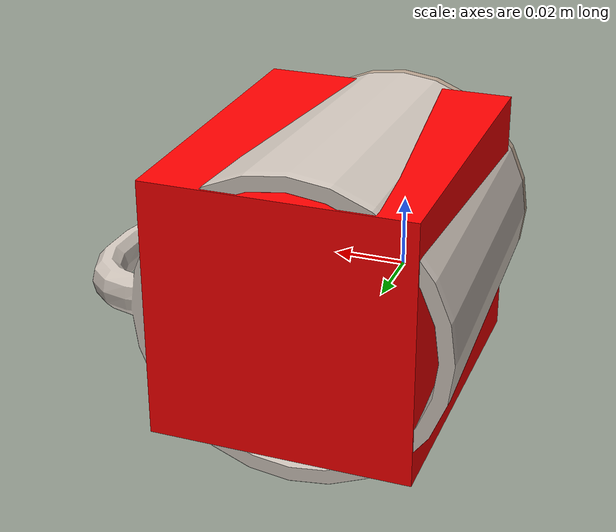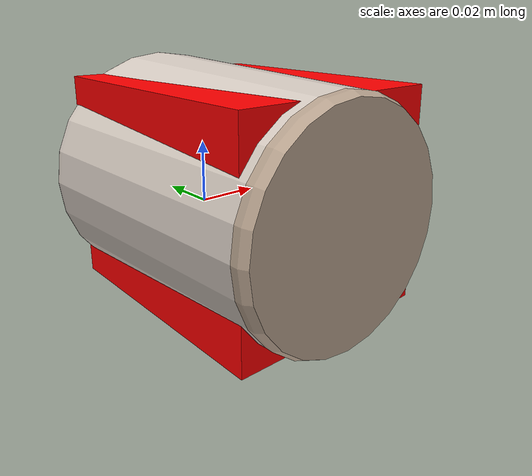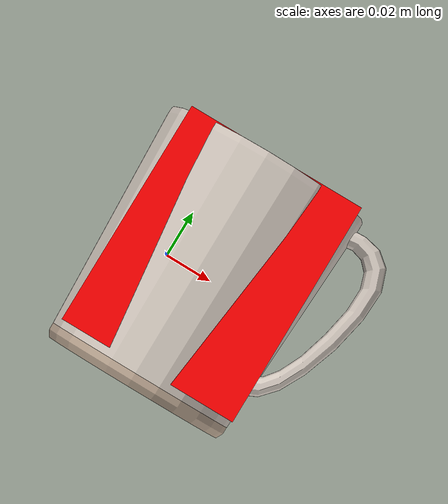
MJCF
<mujoco model="Mug_2">
  <compiler autolimits="true" boundmass="0" angle="radian"/>
  <default>
    <default class="/">
      <default class="__VISUAL_MJT__">
        <geom contype="0" conaffinity="0" group="0"/>
      </default>
      <default class="__STRUCTURAL_MJT__">
        <geom contype="8" conaffinity="15" group="4" friction="0.90000000000000002 0.90000000000000002 0.001" solref="0.025000000000000001 1" solimp="0.998 0.998 0.001"/>
      </default>
      <default class="__DYNAMIC_MJT__">
        <geom contype="1" conaffinity="15" group="4" friction="0.90000000000000002 0.90000000000000002 0.001" solref="0.025000000000000001 1" solimp="0.998 0.998 0.001"/>
      </default>
    </default>
  </default>
  <asset>
    <material name="material_Mug_Decals_Off_Mat" class="/" specular="0.5" shininess="0.5" rgba="1 1 1 0.5"/>
    <material name="material_Porcelain_Sand_Mat" class="/" specular="0.5" shininess="0.5" rgba="0.72549019999999997 0.64313730000000002 0.56470589999999998 1"/>
    <mesh name="Mug_2_mug_2_0" class="/" file="Mug_2_mug_2/Mug_2_mug_2_0.obj" scale="1 1 1"/>
    <mesh name="Mug_2_mug_2_1" class="/" file="Mug_2_mug_2/Mug_2_mug_2_1.obj" scale="1 1 1"/>
  <mesh name="Mug_2_mug_2_0_collision_9.obj" file="Mug_2_mug_2/Mug_2_mug_2_0/Mug_2_mug_2_0_collision_9.obj" scale="1 1 1" inertia="legacy"/>
    <mesh name="Mug_2_mug_2_0_collision_3.obj" file="Mug_2_mug_2/Mug_2_mug_2_0/Mug_2_mug_2_0_collision_3.obj" scale="1 1 1" inertia="legacy"/>
    <mesh name="Mug_2_mug_2_0_collision_19.obj" file="Mug_2_mug_2/Mug_2_mug_2_0/Mug_2_mug_2_0_collision_19.obj" scale="1 1 1" inertia="legacy"/>
    <mesh name="Mug_2_mug_2_0_collision_10.obj" file="Mug_2_mug_2/Mug_2_mug_2_0/Mug_2_mug_2_0_collision_10.obj" scale="1 1 1" inertia="legacy"/>
    <mesh name="Mug_2_mug_2_0_collision_6.obj" file="Mug_2_mug_2/Mug_2_mug_2_0/Mug_2_mug_2_0_collision_6.obj" scale="1 1 1" inertia="legacy"/>
    <mesh name="Mug_2_mug_2_0_collision_23.obj" file="Mug_2_mug_2/Mug_2_mug_2_0/Mug_2_mug_2_0_collision_23.obj" scale="1 1 1" inertia="legacy"/>
    <mesh name="Mug_2_mug_2_0_collision_8.obj" file="Mug_2_mug_2/Mug_2_mug_2_0/Mug_2_mug_2_0_collision_8.obj" scale="1 1 1" inertia="legacy"/>
    <mesh name="Mug_2_mug_2_0_collision_24.obj" file="Mug_2_mug_2/Mug_2_mug_2_0/Mug_2_mug_2_0_collision_24.obj" scale="1 1 1" inertia="legacy"/>
    <mesh name="Mug_2_mug_2_0_collision_12.obj" file="Mug_2_mug_2/Mug_2_mug_2_0/Mug_2_mug_2_0_collision_12.obj" scale="1 1 1" inertia="legacy"/>
    <mesh name="Mug_2_mug_2_0_collision_16.obj" file="Mug_2_mug_2/Mug_2_mug_2_0/Mug_2_mug_2_0_collision_16.obj" scale="1 1 1" inertia="legacy"/>
    <mesh name="Mug_2_mug_2_0_collision_4.obj" file="Mug_2_mug_2/Mug_2_mug_2_0/Mug_2_mug_2_0_collision_4.obj" scale="1 1 1" inertia="legacy"/>
    <mesh name="Mug_2_mug_2_0_collision_5.obj" file="Mug_2_mug_2/Mug_2_mug_2_0/Mug_2_mug_2_0_collision_5.obj" scale="1 1 1" inertia="legacy"/>
    <mesh name="Mug_2_mug_2_0_collision_22.obj" file="Mug_2_mug_2/Mug_2_mug_2_0/Mug_2_mug_2_0_collision_22.obj" scale="1 1 1" inertia="legacy"/>
    <mesh name="Mug_2_mug_2_0_collision_7.obj" file="Mug_2_mug_2/Mug_2_mug_2_0/Mug_2_mug_2_0_collision_7.obj" scale="1 1 1" inertia="legacy"/>
    <mesh name="Mug_2_mug_2_0_collision_1.obj" file="Mug_2_mug_2/Mug_2_mug_2_0/Mug_2_mug_2_0_collision_1.obj" scale="1 1 1" inertia="legacy"/>
    <mesh name="Mug_2_mug_2_0_collision_15.obj" file="Mug_2_mug_2/Mug_2_mug_2_0/Mug_2_mug_2_0_collision_15.obj" scale="1 1 1" inertia="legacy"/>
    <mesh name="Mug_2_mug_2_0_collision_21.obj" file="Mug_2_mug_2/Mug_2_mug_2_0/Mug_2_mug_2_0_collision_21.obj" scale="1 1 1" inertia="legacy"/>
    <mesh name="Mug_2_mug_2_0_collision_14.obj" file="Mug_2_mug_2/Mug_2_mug_2_0/Mug_2_mug_2_0_collision_14.obj" scale="1 1 1" inertia="legacy"/>
    <mesh name="Mug_2_mug_2_0_collision_11.obj" file="Mug_2_mug_2/Mug_2_mug_2_0/Mug_2_mug_2_0_collision_11.obj" scale="1 1 1" inertia="legacy"/>
    <mesh name="Mug_2_mug_2_0_collision_0.obj" file="Mug_2_mug_2/Mug_2_mug_2_0/Mug_2_mug_2_0_collision_0.obj" scale="1 1 1" inertia="legacy"/>
    <mesh name="Mug_2_mug_2_0_collision_20.obj" file="Mug_2_mug_2/Mug_2_mug_2_0/Mug_2_mug_2_0_collision_20.obj" scale="1 1 1" inertia="legacy"/>
    <mesh name="Mug_2_mug_2_0_collision_13.obj" file="Mug_2_mug_2/Mug_2_mug_2_0/Mug_2_mug_2_0_collision_13.obj" scale="1 1 1" inertia="legacy"/>
    <mesh name="Mug_2_mug_2_0_collision_18.obj" file="Mug_2_mug_2/Mug_2_mug_2_0/Mug_2_mug_2_0_collision_18.obj" scale="1 1 1" inertia="legacy"/>
    <mesh name="Mug_2_mug_2_0_collision_2.obj" file="Mug_2_mug_2/Mug_2_mug_2_0/Mug_2_mug_2_0_collision_2.obj" scale="1 1 1" inertia="legacy"/>
    <mesh name="Mug_2_mug_2_0_collision_17.obj" file="Mug_2_mug_2/Mug_2_mug_2_0/Mug_2_mug_2_0_collision_17.obj" scale="1 1 1" inertia="legacy"/>
    <mesh name="Mug_2_mug_2_1_collision_15.obj" file="Mug_2_mug_2/Mug_2_mug_2_1/Mug_2_mug_2_1_collision_15.obj" scale="1 1 1" inertia="legacy"/>
    <mesh name="Mug_2_mug_2_1_collision_5.obj" file="Mug_2_mug_2/Mug_2_mug_2_1/Mug_2_mug_2_1_collision_5.obj" scale="1 1 1" inertia="legacy"/>
    <mesh name="Mug_2_mug_2_1_collision_11.obj" file="Mug_2_mug_2/Mug_2_mug_2_1/Mug_2_mug_2_1_collision_11.obj" scale="1 1 1" inertia="legacy"/>
    <mesh name="Mug_2_mug_2_1_collision_21.obj" file="Mug_2_mug_2/Mug_2_mug_2_1/Mug_2_mug_2_1_collision_21.obj" scale="1 1 1" inertia="legacy"/>
    <mesh name="Mug_2_mug_2_1_collision_13.obj" file="Mug_2_mug_2/Mug_2_mug_2_1/Mug_2_mug_2_1_collision_13.obj" scale="1 1 1" inertia="legacy"/>
    <mesh name="Mug_2_mug_2_1_collision_4.obj" file="Mug_2_mug_2/Mug_2_mug_2_1/Mug_2_mug_2_1_collision_4.obj" scale="1 1 1" inertia="legacy"/>
    <mesh name="Mug_2_mug_2_1_collision_0.obj" file="Mug_2_mug_2/Mug_2_mug_2_1/Mug_2_mug_2_1_collision_0.obj" scale="1 1 1" inertia="legacy"/>
    <mesh name="Mug_2_mug_2_1_collision_7.obj" file="Mug_2_mug_2/Mug_2_mug_2_1/Mug_2_mug_2_1_collision_7.obj" scale="1 1 1" inertia="legacy"/>
    <mesh name="Mug_2_mug_2_1_collision_8.obj" file="Mug_2_mug_2/Mug_2_mug_2_1/Mug_2_mug_2_1_collision_8.obj" scale="1 1 1" inertia="legacy"/>
    <mesh name="Mug_2_mug_2_1_collision_3.obj" file="Mug_2_mug_2/Mug_2_mug_2_1/Mug_2_mug_2_1_collision_3.obj" scale="1 1 1" inertia="legacy"/>
    <mesh name="Mug_2_mug_2_1_collision_14.obj" file="Mug_2_mug_2/Mug_2_mug_2_1/Mug_2_mug_2_1_collision_14.obj" scale="1 1 1" inertia="legacy"/>
    <mesh name="Mug_2_mug_2_1_collision_19.obj" file="Mug_2_mug_2/Mug_2_mug_2_1/Mug_2_mug_2_1_collision_19.obj" scale="1 1 1" inertia="legacy"/>
    <mesh name="Mug_2_mug_2_1_collision_24.obj" file="Mug_2_mug_2/Mug_2_mug_2_1/Mug_2_mug_2_1_collision_24.obj" scale="1 1 1" inertia="legacy"/>
    <mesh name="Mug_2_mug_2_1_collision_2.obj" file="Mug_2_mug_2/Mug_2_mug_2_1/Mug_2_mug_2_1_collision_2.obj" scale="1 1 1" inertia="legacy"/>
    <mesh name="Mug_2_mug_2_1_collision_16.obj" file="Mug_2_mug_2/Mug_2_mug_2_1/Mug_2_mug_2_1_collision_16.obj" scale="1 1 1" inertia="legacy"/>
    <mesh name="Mug_2_mug_2_1_collision_17.obj" file="Mug_2_mug_2/Mug_2_mug_2_1/Mug_2_mug_2_1_collision_17.obj" scale="1 1 1" inertia="legacy"/>
    <mesh name="Mug_2_mug_2_1_collision_1.obj" file="Mug_2_mug_2/Mug_2_mug_2_1/Mug_2_mug_2_1_collision_1.obj" scale="1 1 1" inertia="legacy"/>
    <mesh name="Mug_2_mug_2_1_collision_12.obj" file="Mug_2_mug_2/Mug_2_mug_2_1/Mug_2_mug_2_1_collision_12.obj" scale="1 1 1" inertia="legacy"/>
    <mesh name="Mug_2_mug_2_1_collision_22.obj" file="Mug_2_mug_2/Mug_2_mug_2_1/Mug_2_mug_2_1_collision_22.obj" scale="1 1 1" inertia="legacy"/>
    <mesh name="Mug_2_mug_2_1_collision_6.obj" file="Mug_2_mug_2/Mug_2_mug_2_1/Mug_2_mug_2_1_collision_6.obj" scale="1 1 1" inertia="legacy"/>
    <mesh name="Mug_2_mug_2_1_collision_9.obj" file="Mug_2_mug_2/Mug_2_mug_2_1/Mug_2_mug_2_1_collision_9.obj" scale="1 1 1" inertia="legacy"/>
    <mesh name="Mug_2_mug_2_1_collision_18.obj" file="Mug_2_mug_2/Mug_2_mug_2_1/Mug_2_mug_2_1_collision_18.obj" scale="1 1 1" inertia="legacy"/>
    <mesh name="Mug_2_mug_2_1_collision_10.obj" file="Mug_2_mug_2/Mug_2_mug_2_1/Mug_2_mug_2_1_collision_10.obj" scale="1 1 1" inertia="legacy"/>
    <mesh name="Mug_2_mug_2_1_collision_23.obj" file="Mug_2_mug_2/Mug_2_mug_2_1/Mug_2_mug_2_1_collision_23.obj" scale="1 1 1" inertia="legacy"/>
    <mesh name="Mug_2_mug_2_1_collision_20.obj" file="Mug_2_mug_2/Mug_2_mug_2_1/Mug_2_mug_2_1_collision_20.obj" scale="1 1 1" inertia="legacy"/>
    </asset>
  <worldbody>
    <body name="Mug_2">
      <joint name="Mug_2_free" class="/" type="free" pos="0 0 0" axis="0 0 1" stiffness="0" range="0 0" armature="0" damping="0.10000000000000001" frictionloss="0"/>
      <body name="Mug_2_mug_2" pos="0.015469999999999999 -0.051819999999999998 0.00014999999999999999" quat="1 0 0 0">
        <geom name="Mug_2_mug_2_0" class="__VISUAL_MJT__" type="mesh" material="material_Mug_Decals_Off_Mat" mesh="Mug_2_mug_2_0"/>
        <geom name="Mug_2_mug_2_1" class="__VISUAL_MJT__" type="mesh" material="material_Porcelain_Sand_Mat" mesh="Mug_2_mug_2_1"/>
        <site name="Mug_2_mug_2_ReceptacleCollider_0" class="/" type="box" rgba="1 0 0 1" size="0.037699189037084579 0.047414802014827728 0.037806317210197449" pos="0.0031227730214595795 0.056235752999782562 0" quat="0 1 0 0"/>
        <geom name="Mug_2_Mug_2_mug_2_0__MeshCollider_0" type="mesh" mesh="Mug_2_mug_2_0_collision_9.obj" class="__DYNAMIC_MJT__" rgba="0.6219949660012837 0.5413017782055503 0.5721383795019833 0.07186112539435852"/>
    <geom name="Mug_2_Mug_2_mug_2_0__MeshCollider_1" type="mesh" mesh="Mug_2_mug_2_0_collision_3.obj" class="__DYNAMIC_MJT__" rgba="0.5722362928661673 0.06536132283004636 0.6145915483149833 0.11724981107469612"/>
    <geom name="Mug_2_Mug_2_mug_2_0__MeshCollider_2" type="mesh" mesh="Mug_2_mug_2_0_collision_19.obj" class="__DYNAMIC_MJT__" rgba="0.4384422898827932 0.27690145204136085 0.8990941360164961 0.9637879001664292"/>
    <geom name="Mug_2_Mug_2_mug_2_0__MeshCollider_3" type="mesh" mesh="Mug_2_mug_2_0_collision_10.obj" class="__DYNAMIC_MJT__" rgba="0.6084672477191025 0.056031799456683684 0.09820937539611507 0.8653245589500506"/>
    <geom name="Mug_2_Mug_2_mug_2_0__MeshCollider_4" type="mesh" mesh="Mug_2_mug_2_0_collision_6.obj" class="__DYNAMIC_MJT__" rgba="0.3171631821915306 0.0295277423352599 0.9706967462801722 0.7729945740641437"/>
    <geom name="Mug_2_Mug_2_mug_2_0__MeshCollider_5" type="mesh" mesh="Mug_2_mug_2_0_collision_23.obj" class="__DYNAMIC_MJT__" rgba="0.4886745037019524 0.9918674187312975 0.08155125871747015 0.48630937652602024"/>
    <geom name="Mug_2_Mug_2_mug_2_0__MeshCollider_6" type="mesh" mesh="Mug_2_mug_2_0_collision_8.obj" class="__DYNAMIC_MJT__" rgba="0.829496230763246 0.7919795800366036 0.8095015266346265 0.8732900015689286"/>
    <geom name="Mug_2_Mug_2_mug_2_0__MeshCollider_7" type="mesh" mesh="Mug_2_mug_2_0_collision_24.obj" class="__DYNAMIC_MJT__" rgba="0.8340650299827695 0.8031385659023347 0.6204727079433239 0.7325388456294626"/>
    <geom name="Mug_2_Mug_2_mug_2_0__MeshCollider_8" type="mesh" mesh="Mug_2_mug_2_0_collision_12.obj" class="__DYNAMIC_MJT__" rgba="0.014096451857132708 0.41903552366114194 0.7396468253942352 0.5093749871525668"/>
    <geom name="Mug_2_Mug_2_mug_2_0__MeshCollider_9" type="mesh" mesh="Mug_2_mug_2_0_collision_16.obj" class="__DYNAMIC_MJT__" rgba="0.35890504451383176 0.06119410168413397 0.992602372954659 0.44209627682557406"/>
    <geom name="Mug_2_Mug_2_mug_2_0__MeshCollider_10" type="mesh" mesh="Mug_2_mug_2_0_collision_4.obj" class="__DYNAMIC_MJT__" rgba="0.5254000116278414 0.6131865656721318 0.5768614479524019 0.7153334079139696"/>
    <geom name="Mug_2_Mug_2_mug_2_0__MeshCollider_11" type="mesh" mesh="Mug_2_mug_2_0_collision_5.obj" class="__DYNAMIC_MJT__" rgba="0.5541297970788676 0.9152764564374666 0.2777279309121369 0.36136232310910066"/>
    <geom name="Mug_2_Mug_2_mug_2_0__MeshCollider_12" type="mesh" mesh="Mug_2_mug_2_0_collision_22.obj" class="__DYNAMIC_MJT__" rgba="0.8899903881352099 0.23131081225265038 0.2650068768495575 0.08781082597814305"/>
    <geom name="Mug_2_Mug_2_mug_2_0__MeshCollider_13" type="mesh" mesh="Mug_2_mug_2_0_collision_7.obj" class="__DYNAMIC_MJT__" rgba="0.4472527431683708 0.8835731097667074 0.2604293439456883 0.19661832381002942"/>
    <geom name="Mug_2_Mug_2_mug_2_0__MeshCollider_14" type="mesh" mesh="Mug_2_mug_2_0_collision_1.obj" class="__DYNAMIC_MJT__" rgba="0.6194058651514517 0.842494912678963 0.4408269202881261 0.4221862091623575"/>
    <geom name="Mug_2_Mug_2_mug_2_0__MeshCollider_15" type="mesh" mesh="Mug_2_mug_2_0_collision_15.obj" class="__DYNAMIC_MJT__" rgba="0.8193076654555853 0.43050236651400775 0.14369442856439785 0.1330093413746143"/>
    <geom name="Mug_2_Mug_2_mug_2_0__MeshCollider_16" type="mesh" mesh="Mug_2_mug_2_0_collision_21.obj" class="__DYNAMIC_MJT__" rgba="0.8792432622683016 0.20495861158519868 0.6278711800368778 0.9016482322706676"/>
    <geom name="Mug_2_Mug_2_mug_2_0__MeshCollider_17" type="mesh" mesh="Mug_2_mug_2_0_collision_14.obj" class="__DYNAMIC_MJT__" rgba="0.5473608797373394 0.560558473967645 0.9929576029209151 0.7988703479968586"/>
    <geom name="Mug_2_Mug_2_mug_2_0__MeshCollider_18" type="mesh" mesh="Mug_2_mug_2_0_collision_11.obj" class="__DYNAMIC_MJT__" rgba="0.6129162314363938 0.43578465164131064 0.11426430136933508 0.9623515866532968"/>
    <geom name="Mug_2_Mug_2_mug_2_0__MeshCollider_19" type="mesh" mesh="Mug_2_mug_2_0_collision_0.obj" class="__DYNAMIC_MJT__" rgba="0.036858494173493184 0.6217074245542172 0.5643542375703808 0.9086232958080761"/>
    <geom name="Mug_2_Mug_2_mug_2_0__MeshCollider_20" type="mesh" mesh="Mug_2_mug_2_0_collision_20.obj" class="__DYNAMIC_MJT__" rgba="0.5855670630068835 0.3806214206402826 0.17168447039223678 0.8189044150151753"/>
    <geom name="Mug_2_Mug_2_mug_2_0__MeshCollider_21" type="mesh" mesh="Mug_2_mug_2_0_collision_13.obj" class="__DYNAMIC_MJT__" rgba="0.19900912435542428 0.7818624948149762 0.6318662203677912 0.4097042164239306"/>
    <geom name="Mug_2_Mug_2_mug_2_0__MeshCollider_22" type="mesh" mesh="Mug_2_mug_2_0_collision_18.obj" class="__DYNAMIC_MJT__" rgba="0.41933546472186345 0.2188567711898466 0.1176958084379246 0.6326323695746588"/>
    <geom name="Mug_2_Mug_2_mug_2_0__MeshCollider_23" type="mesh" mesh="Mug_2_mug_2_0_collision_2.obj" class="__DYNAMIC_MJT__" rgba="0.4280459630210579 0.5640242914078589 0.1366653884997483 0.45837043512521647"/>
    <geom name="Mug_2_Mug_2_mug_2_0__MeshCollider_24" type="mesh" mesh="Mug_2_mug_2_0_collision_17.obj" class="__DYNAMIC_MJT__" rgba="0.2572218997325102 0.44935159200048 0.35405028213684253 0.8770587340375443"/>
    <geom name="Mug_2_Mug_2_mug_2_0__MeshCollider_25" type="mesh" mesh="Mug_2_mug_2_1_collision_15.obj" class="__DYNAMIC_MJT__" rgba="0.20339465912268417 0.8840649902539853 0.19308214231084708 0.7915583558329079"/>
    <geom name="Mug_2_Mug_2_mug_2_0__MeshCollider_26" type="mesh" mesh="Mug_2_mug_2_1_collision_5.obj" class="__DYNAMIC_MJT__" rgba="0.5788555455557212 0.3362860358381137 0.5740703727124584 0.11759386085586931"/>
    <geom name="Mug_2_Mug_2_mug_2_0__MeshCollider_27" type="mesh" mesh="Mug_2_mug_2_1_collision_11.obj" class="__DYNAMIC_MJT__" rgba="0.6779772171172995 0.9144658044324843 0.8428775582181405 0.6077987043081643"/>
    <geom name="Mug_2_Mug_2_mug_2_0__MeshCollider_28" type="mesh" mesh="Mug_2_mug_2_1_collision_21.obj" class="__DYNAMIC_MJT__" rgba="0.08660717453860844 0.21179136661995923 0.4075344591331044 0.8483912611531571"/>
    <geom name="Mug_2_Mug_2_mug_2_0__MeshCollider_29" type="mesh" mesh="Mug_2_mug_2_1_collision_13.obj" class="__DYNAMIC_MJT__" rgba="0.3209380738691183 0.7289037716628134 0.5532021670712496 0.8016384235217348"/>
    <geom name="Mug_2_Mug_2_mug_2_0__MeshCollider_30" type="mesh" mesh="Mug_2_mug_2_1_collision_4.obj" class="__DYNAMIC_MJT__" rgba="0.18945803650438864 0.3993530007529632 0.9884718292023232 0.7494625687312435"/>
    <geom name="Mug_2_Mug_2_mug_2_0__MeshCollider_31" type="mesh" mesh="Mug_2_mug_2_1_collision_0.obj" class="__DYNAMIC_MJT__" rgba="0.28189369339377524 0.41313197870092344 0.03881248091758294 0.09747498907194763"/>
    <geom name="Mug_2_Mug_2_mug_2_0__MeshCollider_32" type="mesh" mesh="Mug_2_mug_2_1_collision_7.obj" class="__DYNAMIC_MJT__" rgba="0.33711538940509644 0.2992342186122957 0.11963430726677038 0.07670032286138218"/>
    <geom name="Mug_2_Mug_2_mug_2_0__MeshCollider_33" type="mesh" mesh="Mug_2_mug_2_1_collision_8.obj" class="__DYNAMIC_MJT__" rgba="0.580755004791042 0.6457046827237501 0.6562375159479346 0.4045774027222667"/>
    <geom name="Mug_2_Mug_2_mug_2_0__MeshCollider_34" type="mesh" mesh="Mug_2_mug_2_1_collision_3.obj" class="__DYNAMIC_MJT__" rgba="0.5396526667276411 0.7119800455830084 0.658645944903793 0.6410915409798554"/>
    <geom name="Mug_2_Mug_2_mug_2_0__MeshCollider_35" type="mesh" mesh="Mug_2_mug_2_1_collision_14.obj" class="__DYNAMIC_MJT__" rgba="0.4628703739457122 0.6143016746519735 0.910066316500222 0.5973049059281376"/>
    <geom name="Mug_2_Mug_2_mug_2_0__MeshCollider_36" type="mesh" mesh="Mug_2_mug_2_1_collision_19.obj" class="__DYNAMIC_MJT__" rgba="0.10299174239364084 0.8745351353529313 0.13212520887367696 0.7745623467197962"/>
    <geom name="Mug_2_Mug_2_mug_2_0__MeshCollider_37" type="mesh" mesh="Mug_2_mug_2_1_collision_24.obj" class="__DYNAMIC_MJT__" rgba="0.6767830566951074 0.23522817952781605 0.07673903332605714 0.40076993430952534"/>
    <geom name="Mug_2_Mug_2_mug_2_0__MeshCollider_38" type="mesh" mesh="Mug_2_mug_2_1_collision_2.obj" class="__DYNAMIC_MJT__" rgba="0.9590000569241067 0.9385079043993834 0.21413260638686138 0.6781780944464573"/>
    <geom name="Mug_2_Mug_2_mug_2_0__MeshCollider_39" type="mesh" mesh="Mug_2_mug_2_1_collision_16.obj" class="__DYNAMIC_MJT__" rgba="0.955403139544926 0.403630307910119 0.41969099237229957 0.6220601396685377"/>
    <geom name="Mug_2_Mug_2_mug_2_0__MeshCollider_40" type="mesh" mesh="Mug_2_mug_2_1_collision_17.obj" class="__DYNAMIC_MJT__" rgba="0.3957822805915936 0.3175250240667977 0.27138544637389983 0.07552593169260724"/>
    <geom name="Mug_2_Mug_2_mug_2_0__MeshCollider_41" type="mesh" mesh="Mug_2_mug_2_1_collision_1.obj" class="__DYNAMIC_MJT__" rgba="0.4451933529234343 0.9959287838727953 0.17883474034573643 0.669818050758493"/>
    <geom name="Mug_2_Mug_2_mug_2_0__MeshCollider_42" type="mesh" mesh="Mug_2_mug_2_1_collision_12.obj" class="__DYNAMIC_MJT__" rgba="0.6800611518889879 0.6315590592982033 0.6288237637958685 0.49346133292434535"/>
    <geom name="Mug_2_Mug_2_mug_2_0__MeshCollider_43" type="mesh" mesh="Mug_2_mug_2_1_collision_22.obj" class="__DYNAMIC_MJT__" rgba="0.3721008996462225 0.6707329355970164 0.2590012325740053 0.17874552638931873"/>
    <geom name="Mug_2_Mug_2_mug_2_0__MeshCollider_44" type="mesh" mesh="Mug_2_mug_2_1_collision_6.obj" class="__DYNAMIC_MJT__" rgba="0.054389114739872624 0.7067396016670985 0.36416317996053815 0.4625554348643528"/>
    <geom name="Mug_2_Mug_2_mug_2_0__MeshCollider_45" type="mesh" mesh="Mug_2_mug_2_1_collision_9.obj" class="__DYNAMIC_MJT__" rgba="0.2688372013922288 0.28851299269442787 0.10882530614003427 0.10886437175764974"/>
    <geom name="Mug_2_Mug_2_mug_2_0__MeshCollider_46" type="mesh" mesh="Mug_2_mug_2_1_collision_18.obj" class="__DYNAMIC_MJT__" rgba="0.10536737076874625 0.3418091142501454 0.6708665766428509 0.9878821635208304"/>
    <geom name="Mug_2_Mug_2_mug_2_0__MeshCollider_47" type="mesh" mesh="Mug_2_mug_2_1_collision_10.obj" class="__DYNAMIC_MJT__" rgba="0.6569215105718051 0.01907131192185829 0.09039502891881901 0.2392679589238148"/>
    <geom name="Mug_2_Mug_2_mug_2_0__MeshCollider_48" type="mesh" mesh="Mug_2_mug_2_1_collision_23.obj" class="__DYNAMIC_MJT__" rgba="0.03182616283162509 0.7551935194302662 0.11341118629928693 0.7861690743724581"/>
    <geom name="Mug_2_Mug_2_mug_2_0__MeshCollider_49" type="mesh" mesh="Mug_2_mug_2_1_collision_20.obj" class="__DYNAMIC_MJT__" rgba="0.8140220454212899 0.13147633257923808 0.6597042092814054 0.6233724033347375"/>
    <geom name="Mug_2_Mug_2_mug_2_0__MeshCollider_50" type="mesh" mesh="Mug_2_mug_2_0_collision_9.obj" class="__DYNAMIC_MJT__" rgba="0.0459133740267077 0.7926409267689287 0.9013817995440487 0.2029848755449245"/>
    <geom name="Mug_2_Mug_2_mug_2_0__MeshCollider_51" type="mesh" mesh="Mug_2_mug_2_0_collision_3.obj" class="__DYNAMIC_MJT__" rgba="0.035126494235720784 0.0011339522736618646 0.14729150140159664 0.6334164159577926"/>
    <geom name="Mug_2_Mug_2_mug_2_0__MeshCollider_52" type="mesh" mesh="Mug_2_mug_2_0_collision_19.obj" class="__DYNAMIC_MJT__" rgba="0.6738737396582268 0.125605026765653 0.37824155090155454 0.23069963974228647"/>
    <geom name="Mug_2_Mug_2_mug_2_0__MeshCollider_53" type="mesh" mesh="Mug_2_mug_2_0_collision_10.obj" class="__DYNAMIC_MJT__" rgba="0.5579999365498726 0.49449017200658385 0.6420943330072441 0.21511733878571926"/>
    <geom name="Mug_2_Mug_2_mug_2_0__MeshCollider_54" type="mesh" mesh="Mug_2_mug_2_0_collision_6.obj" class="__DYNAMIC_MJT__" rgba="0.5832966946846625 0.317653762977005 0.608480477021932 0.45129473731311676"/>
    <geom name="Mug_2_Mug_2_mug_2_0__MeshCollider_55" type="mesh" mesh="Mug_2_mug_2_0_collision_23.obj" class="__DYNAMIC_MJT__" rgba="0.13932479784887508 0.43359254802863934 0.9936393717475723 0.4914578403113513"/>
    <geom name="Mug_2_Mug_2_mug_2_0__MeshCollider_56" type="mesh" mesh="Mug_2_mug_2_0_collision_8.obj" class="__DYNAMIC_MJT__" rgba="0.9539245428937413 0.9131997408064665 0.14349412808102202 0.6970443294579335"/>
    <geom name="Mug_2_Mug_2_mug_2_0__MeshCollider_57" type="mesh" mesh="Mug_2_mug_2_0_collision_24.obj" class="__DYNAMIC_MJT__" rgba="0.5477259725668838 0.9525390410871271 0.3629320245338141 0.08420149493321338"/>
    <geom name="Mug_2_Mug_2_mug_2_0__MeshCollider_58" type="mesh" mesh="Mug_2_mug_2_0_collision_12.obj" class="__DYNAMIC_MJT__" rgba="0.9922698233276249 0.09653708375459025 0.46354501341779564 0.9402182295301965"/>
    <geom name="Mug_2_Mug_2_mug_2_0__MeshCollider_59" type="mesh" mesh="Mug_2_mug_2_0_collision_16.obj" class="__DYNAMIC_MJT__" rgba="0.47890488898000916 0.019370014607932196 0.9105473950040525 0.1397460290588327"/>
    <geom name="Mug_2_Mug_2_mug_2_0__MeshCollider_60" type="mesh" mesh="Mug_2_mug_2_0_collision_4.obj" class="__DYNAMIC_MJT__" rgba="0.1869627064235755 0.5204933669619584 0.544540894461301 0.3261114162416824"/>
    <geom name="Mug_2_Mug_2_mug_2_0__MeshCollider_61" type="mesh" mesh="Mug_2_mug_2_0_collision_5.obj" class="__DYNAMIC_MJT__" rgba="0.8634663506717453 0.3912527045107188 0.9660339724176922 0.7432977535785289"/>
    <geom name="Mug_2_Mug_2_mug_2_0__MeshCollider_62" type="mesh" mesh="Mug_2_mug_2_0_collision_22.obj" class="__DYNAMIC_MJT__" rgba="0.30153358095144833 0.16857982346049927 0.7085806721066493 0.9483154862315805"/>
    <geom name="Mug_2_Mug_2_mug_2_0__MeshCollider_63" type="mesh" mesh="Mug_2_mug_2_0_collision_7.obj" class="__DYNAMIC_MJT__" rgba="0.9127612829962125 0.12405014676572257 0.7567791141039587 0.19704656754213246"/>
    <geom name="Mug_2_Mug_2_mug_2_0__MeshCollider_64" type="mesh" mesh="Mug_2_mug_2_0_collision_1.obj" class="__DYNAMIC_MJT__" rgba="0.40276462449540695 0.4877489817350894 0.6240184417345754 0.40136365600449275"/>
    <geom name="Mug_2_Mug_2_mug_2_0__MeshCollider_65" type="mesh" mesh="Mug_2_mug_2_0_collision_15.obj" class="__DYNAMIC_MJT__" rgba="0.9899753703194385 0.8614688120756729 0.009780180614338718 0.35297559873960505"/>
    <geom name="Mug_2_Mug_2_mug_2_0__MeshCollider_66" type="mesh" mesh="Mug_2_mug_2_0_collision_21.obj" class="__DYNAMIC_MJT__" rgba="0.8342782365949987 0.9847093707611061 0.5399602714644988 0.23980853046471917"/>
    <geom name="Mug_2_Mug_2_mug_2_0__MeshCollider_67" type="mesh" mesh="Mug_2_mug_2_0_collision_14.obj" class="__DYNAMIC_MJT__" rgba="0.07007374055561177 0.8840537535569832 0.8703571804885298 0.5101352128797214"/>
    <geom name="Mug_2_Mug_2_mug_2_0__MeshCollider_68" type="mesh" mesh="Mug_2_mug_2_0_collision_11.obj" class="__DYNAMIC_MJT__" rgba="0.374279130502269 0.8538615628272185 0.8858537321396526 0.6219655641845705"/>
    <geom name="Mug_2_Mug_2_mug_2_0__MeshCollider_69" type="mesh" mesh="Mug_2_mug_2_0_collision_0.obj" class="__DYNAMIC_MJT__" rgba="0.9973946886114886 0.4415186473996273 0.5329511227083771 0.38871683823381376"/>
    <geom name="Mug_2_Mug_2_mug_2_0__MeshCollider_70" type="mesh" mesh="Mug_2_mug_2_0_collision_20.obj" class="__DYNAMIC_MJT__" rgba="0.19016869067850772 0.3173557576576025 0.30772329668423126 0.24423672715921962"/>
    <geom name="Mug_2_Mug_2_mug_2_0__MeshCollider_71" type="mesh" mesh="Mug_2_mug_2_0_collision_13.obj" class="__DYNAMIC_MJT__" rgba="0.06227959062604249 0.7667802133331031 0.39389571130695045 0.9569665766049004"/>
    <geom name="Mug_2_Mug_2_mug_2_0__MeshCollider_72" type="mesh" mesh="Mug_2_mug_2_0_collision_18.obj" class="__DYNAMIC_MJT__" rgba="0.9454475461351629 0.12311269900662614 0.8139780897976386 0.6712214799906727"/>
    <geom name="Mug_2_Mug_2_mug_2_0__MeshCollider_73" type="mesh" mesh="Mug_2_mug_2_0_collision_2.obj" class="__DYNAMIC_MJT__" rgba="0.8274625762957605 0.6929618979691736 0.22358311803964415 0.02990399840609448"/>
    <geom name="Mug_2_Mug_2_mug_2_0__MeshCollider_74" type="mesh" mesh="Mug_2_mug_2_0_collision_17.obj" class="__DYNAMIC_MJT__" rgba="0.935470216434848 0.8013305739120717 0.44520161917563306 0.658615004608403"/>
    <geom name="Mug_2_Mug_2_mug_2_0__MeshCollider_75" type="mesh" mesh="Mug_2_mug_2_1_collision_15.obj" class="__DYNAMIC_MJT__" rgba="0.9083697492355566 0.26332655492055557 0.6328118727959203 0.6053102871034663"/>
    <geom name="Mug_2_Mug_2_mug_2_0__MeshCollider_76" type="mesh" mesh="Mug_2_mug_2_1_collision_5.obj" class="__DYNAMIC_MJT__" rgba="0.23111404022297344 0.5959040500367141 0.4344210988317727 0.1443892500867634"/>
    <geom name="Mug_2_Mug_2_mug_2_0__MeshCollider_77" type="mesh" mesh="Mug_2_mug_2_1_collision_11.obj" class="__DYNAMIC_MJT__" rgba="0.23561093776241837 0.8277352350091822 0.9324433777652371 0.23110561755740922"/>
    <geom name="Mug_2_Mug_2_mug_2_0__MeshCollider_78" type="mesh" mesh="Mug_2_mug_2_1_collision_21.obj" class="__DYNAMIC_MJT__" rgba="0.10610012929567436 0.9708110660426004 0.8783106268758228 0.5141726853156061"/>
    <geom name="Mug_2_Mug_2_mug_2_0__MeshCollider_79" type="mesh" mesh="Mug_2_mug_2_1_collision_13.obj" class="__DYNAMIC_MJT__" rgba="0.1419912660215148 0.8413341715910452 0.7715509073869337 0.3992948332542613"/>
    <geom name="Mug_2_Mug_2_mug_2_0__MeshCollider_80" type="mesh" mesh="Mug_2_mug_2_1_collision_4.obj" class="__DYNAMIC_MJT__" rgba="0.735944097603902 0.11690283609152463 0.8281440192164481 0.10513566345334069"/>
    <geom name="Mug_2_Mug_2_mug_2_0__MeshCollider_81" type="mesh" mesh="Mug_2_mug_2_1_collision_0.obj" class="__DYNAMIC_MJT__" rgba="0.38392642831253165 0.6607227382104961 0.9955662381096334 0.1714935982099819"/>
    <geom name="Mug_2_Mug_2_mug_2_0__MeshCollider_82" type="mesh" mesh="Mug_2_mug_2_1_collision_7.obj" class="__DYNAMIC_MJT__" rgba="0.19786189622328254 0.6285727483244781 0.26536707745220145 0.998973579560993"/>
    <geom name="Mug_2_Mug_2_mug_2_0__MeshCollider_83" type="mesh" mesh="Mug_2_mug_2_1_collision_8.obj" class="__DYNAMIC_MJT__" rgba="0.957484977345145 0.42953971233367005 0.6502738419726877 0.6144183235167159"/>
    <geom name="Mug_2_Mug_2_mug_2_0__MeshCollider_84" type="mesh" mesh="Mug_2_mug_2_1_collision_3.obj" class="__DYNAMIC_MJT__" rgba="0.3291905801446925 0.30614043564629123 0.2591004804171463 0.8815781575528476"/>
    <geom name="Mug_2_Mug_2_mug_2_0__MeshCollider_85" type="mesh" mesh="Mug_2_mug_2_1_collision_14.obj" class="__DYNAMIC_MJT__" rgba="0.1941069659865815 0.476040672032358 0.5938785056008878 0.03343336254938056"/>
    <geom name="Mug_2_Mug_2_mug_2_0__MeshCollider_86" type="mesh" mesh="Mug_2_mug_2_1_collision_19.obj" class="__DYNAMIC_MJT__" rgba="0.31236436291301983 0.8103313921972624 0.0543736606089541 0.002800870968468705"/>
    <geom name="Mug_2_Mug_2_mug_2_0__MeshCollider_87" type="mesh" mesh="Mug_2_mug_2_1_collision_24.obj" class="__DYNAMIC_MJT__" rgba="0.5308950879809197 0.9659849459460799 0.5207994276151859 0.6308607217667027"/>
    <geom name="Mug_2_Mug_2_mug_2_0__MeshCollider_88" type="mesh" mesh="Mug_2_mug_2_1_collision_2.obj" class="__DYNAMIC_MJT__" rgba="0.4452369690931822 0.6850349333874454 0.5244653986114794 0.17173722917612633"/>
    <geom name="Mug_2_Mug_2_mug_2_0__MeshCollider_89" type="mesh" mesh="Mug_2_mug_2_1_collision_16.obj" class="__DYNAMIC_MJT__" rgba="0.02428471135194643 0.3178095025133727 0.7407679899440813 0.8253204301340934"/>
    <geom name="Mug_2_Mug_2_mug_2_0__MeshCollider_90" type="mesh" mesh="Mug_2_mug_2_1_collision_17.obj" class="__DYNAMIC_MJT__" rgba="0.20028364939854104 0.5228341645795832 0.004059455905970344 0.8057386800237922"/>
    <geom name="Mug_2_Mug_2_mug_2_0__MeshCollider_91" type="mesh" mesh="Mug_2_mug_2_1_collision_1.obj" class="__DYNAMIC_MJT__" rgba="0.18372655416712425 0.8117554889856071 0.5419794136515936 0.9451346951372197"/>
    <geom name="Mug_2_Mug_2_mug_2_0__MeshCollider_92" type="mesh" mesh="Mug_2_mug_2_1_collision_12.obj" class="__DYNAMIC_MJT__" rgba="0.7682400104151169 0.36454700489928304 0.9299750258378586 0.0038478371369712328"/>
    <geom name="Mug_2_Mug_2_mug_2_0__MeshCollider_93" type="mesh" mesh="Mug_2_mug_2_1_collision_22.obj" class="__DYNAMIC_MJT__" rgba="0.21641338896888995 0.5521162867989896 0.869986306614312 0.16454156895929806"/>
    <geom name="Mug_2_Mug_2_mug_2_0__MeshCollider_94" type="mesh" mesh="Mug_2_mug_2_1_collision_6.obj" class="__DYNAMIC_MJT__" rgba="0.21525061978421933 0.5960814725348959 0.8727976801199052 0.434899220102008"/>
    <geom name="Mug_2_Mug_2_mug_2_0__MeshCollider_95" type="mesh" mesh="Mug_2_mug_2_1_collision_9.obj" class="__DYNAMIC_MJT__" rgba="0.6122332435432999 0.00691976424698304 0.2527699243401531 0.3661073402525844"/>
    <geom name="Mug_2_Mug_2_mug_2_0__MeshCollider_96" type="mesh" mesh="Mug_2_mug_2_1_collision_18.obj" class="__DYNAMIC_MJT__" rgba="0.3328402092602979 0.24953005407628537 0.15748194080160227 0.07770172994725777"/>
    <geom name="Mug_2_Mug_2_mug_2_0__MeshCollider_97" type="mesh" mesh="Mug_2_mug_2_1_collision_10.obj" class="__DYNAMIC_MJT__" rgba="0.13996565390482785 0.3083012684577786 0.84501590472519 0.41166605699194536"/>
    <geom name="Mug_2_Mug_2_mug_2_0__MeshCollider_98" type="mesh" mesh="Mug_2_mug_2_1_collision_23.obj" class="__DYNAMIC_MJT__" rgba="0.37297095675712166 0.3921491204258304 0.8391404208043718 0.8638102923522764"/>
    <geom name="Mug_2_Mug_2_mug_2_0__MeshCollider_99" type="mesh" mesh="Mug_2_mug_2_1_collision_20.obj" class="__DYNAMIC_MJT__" rgba="0.6375077769614625 0.8240206918917871 0.7051514575472779 0.7898360700885518"/>
    <geom name="Mug_2_Mug_2_mug_2_1__MeshCollider_0" type="mesh" mesh="Mug_2_mug_2_0_collision_9.obj" class="__DYNAMIC_MJT__" rgba="0.49955673589338767 0.20082555247607714 0.5607656618770899 0.7050448719846883"/>
    <geom name="Mug_2_Mug_2_mug_2_1__MeshCollider_1" type="mesh" mesh="Mug_2_mug_2_0_collision_3.obj" class="__DYNAMIC_MJT__" rgba="0.549648509957752 0.4927477730541089 0.4339574844439187 0.07879357991722669"/>
    <geom name="Mug_2_Mug_2_mug_2_1__MeshCollider_2" type="mesh" mesh="Mug_2_mug_2_0_collision_19.obj" class="__DYNAMIC_MJT__" rgba="0.7213454059766181 0.8102614334223682 0.8449015959552224 0.7074672376211518"/>
    <geom name="Mug_2_Mug_2_mug_2_1__MeshCollider_3" type="mesh" mesh="Mug_2_mug_2_0_collision_10.obj" class="__DYNAMIC_MJT__" rgba="0.22627397649550918 0.4935189250942338 0.9523389373023573 0.47411118486178216"/>
    <geom name="Mug_2_Mug_2_mug_2_1__MeshCollider_4" type="mesh" mesh="Mug_2_mug_2_0_collision_6.obj" class="__DYNAMIC_MJT__" rgba="0.6383119242427487 0.3013778850091078 0.9253643591993537 0.819993994942632"/>
    <geom name="Mug_2_Mug_2_mug_2_1__MeshCollider_5" type="mesh" mesh="Mug_2_mug_2_0_collision_23.obj" class="__DYNAMIC_MJT__" rgba="0.3343778375357668 0.320542687691164 0.7229515834088522 0.5407277017655548"/>
    <geom name="Mug_2_Mug_2_mug_2_1__MeshCollider_6" type="mesh" mesh="Mug_2_mug_2_0_collision_8.obj" class="__DYNAMIC_MJT__" rgba="0.39459215095363687 0.11933813039534136 0.4103744287068959 0.21479133766935543"/>
    <geom name="Mug_2_Mug_2_mug_2_1__MeshCollider_7" type="mesh" mesh="Mug_2_mug_2_0_collision_24.obj" class="__DYNAMIC_MJT__" rgba="0.7804963022728769 0.48783839453045363 0.7488812095840629 0.5277964641225463"/>
    <geom name="Mug_2_Mug_2_mug_2_1__MeshCollider_8" type="mesh" mesh="Mug_2_mug_2_0_collision_12.obj" class="__DYNAMIC_MJT__" rgba="0.8021982799348154 0.7001466813654702 0.4163154110825684 0.18143912538716755"/>
    <geom name="Mug_2_Mug_2_mug_2_1__MeshCollider_9" type="mesh" mesh="Mug_2_mug_2_0_collision_16.obj" class="__DYNAMIC_MJT__" rgba="0.4127199740762162 0.3363405200314544 0.36292396244894287 0.8012987277808413"/>
    <geom name="Mug_2_Mug_2_mug_2_1__MeshCollider_10" type="mesh" mesh="Mug_2_mug_2_0_collision_4.obj" class="__DYNAMIC_MJT__" rgba="0.14209653953954848 0.6396665372878153 0.9288472979775212 0.7793400606744526"/>
    <geom name="Mug_2_Mug_2_mug_2_1__MeshCollider_11" type="mesh" mesh="Mug_2_mug_2_0_collision_5.obj" class="__DYNAMIC_MJT__" rgba="0.41405785358128033 0.5384852785197894 0.4982670231282591 0.3765529999419932"/>
    <geom name="Mug_2_Mug_2_mug_2_1__MeshCollider_12" type="mesh" mesh="Mug_2_mug_2_0_collision_22.obj" class="__DYNAMIC_MJT__" rgba="0.8064578500952344 0.34612847972495675 0.38996880221184216 0.3985763799998624"/>
    <geom name="Mug_2_Mug_2_mug_2_1__MeshCollider_13" type="mesh" mesh="Mug_2_mug_2_0_collision_7.obj" class="__DYNAMIC_MJT__" rgba="0.6779156349110405 0.1862822566934471 0.14829130373617228 0.3199958208721875"/>
    <geom name="Mug_2_Mug_2_mug_2_1__MeshCollider_14" type="mesh" mesh="Mug_2_mug_2_0_collision_1.obj" class="__DYNAMIC_MJT__" rgba="0.71153577115372 0.7913563178206928 0.750254854250795 0.8582578388093529"/>
    <geom name="Mug_2_Mug_2_mug_2_1__MeshCollider_15" type="mesh" mesh="Mug_2_mug_2_0_collision_15.obj" class="__DYNAMIC_MJT__" rgba="0.5764850945412561 0.43263913851267477 0.6668583032804463 0.3781438173985414"/>
    <geom name="Mug_2_Mug_2_mug_2_1__MeshCollider_16" type="mesh" mesh="Mug_2_mug_2_0_collision_21.obj" class="__DYNAMIC_MJT__" rgba="0.20984073897413347 0.20059035947643888 0.9004002255618968 0.548866068092963"/>
    <geom name="Mug_2_Mug_2_mug_2_1__MeshCollider_17" type="mesh" mesh="Mug_2_mug_2_0_collision_14.obj" class="__DYNAMIC_MJT__" rgba="0.9600764365329041 0.774965298130621 0.06730662147872601 0.8566042329779828"/>
    <geom name="Mug_2_Mug_2_mug_2_1__MeshCollider_18" type="mesh" mesh="Mug_2_mug_2_0_collision_11.obj" class="__DYNAMIC_MJT__" rgba="0.08245568676773196 0.41167672243393094 0.3871132086021106 0.7111697796714536"/>
    <geom name="Mug_2_Mug_2_mug_2_1__MeshCollider_19" type="mesh" mesh="Mug_2_mug_2_0_collision_0.obj" class="__DYNAMIC_MJT__" rgba="0.9193127966389943 0.4766721699848683 0.13251785431402308 0.32080988485287387"/>
    <geom name="Mug_2_Mug_2_mug_2_1__MeshCollider_20" type="mesh" mesh="Mug_2_mug_2_0_collision_20.obj" class="__DYNAMIC_MJT__" rgba="0.3514135765349613 0.5956033415402772 0.09572852737102056 0.05995097607989541"/>
    <geom name="Mug_2_Mug_2_mug_2_1__MeshCollider_21" type="mesh" mesh="Mug_2_mug_2_0_collision_13.obj" class="__DYNAMIC_MJT__" rgba="0.09615240148821314 0.22059915982057687 0.45264231809175093 0.2621063812670802"/>
    <geom name="Mug_2_Mug_2_mug_2_1__MeshCollider_22" type="mesh" mesh="Mug_2_mug_2_0_collision_18.obj" class="__DYNAMIC_MJT__" rgba="0.7536319696225182 0.0815206939126698 0.12905174520228835 0.6900765358401691"/>
    <geom name="Mug_2_Mug_2_mug_2_1__MeshCollider_23" type="mesh" mesh="Mug_2_mug_2_0_collision_2.obj" class="__DYNAMIC_MJT__" rgba="0.6661265579642262 0.1153728611587016 0.06451360796704253 0.6184366328658075"/>
    <geom name="Mug_2_Mug_2_mug_2_1__MeshCollider_24" type="mesh" mesh="Mug_2_mug_2_0_collision_17.obj" class="__DYNAMIC_MJT__" rgba="0.8875562152897266 0.9315071060257948 0.9423327418844081 0.4651511986692687"/>
    <geom name="Mug_2_Mug_2_mug_2_1__MeshCollider_25" type="mesh" mesh="Mug_2_mug_2_1_collision_15.obj" class="__DYNAMIC_MJT__" rgba="0.979561260044146 0.5683975031875504 0.09917216646069638 0.1604098191528267"/>
    <geom name="Mug_2_Mug_2_mug_2_1__MeshCollider_26" type="mesh" mesh="Mug_2_mug_2_1_collision_5.obj" class="__DYNAMIC_MJT__" rgba="0.7546800331762363 0.35352827064324344 0.231694260817208 0.6890995957190083"/>
    <geom name="Mug_2_Mug_2_mug_2_1__MeshCollider_27" type="mesh" mesh="Mug_2_mug_2_1_collision_11.obj" class="__DYNAMIC_MJT__" rgba="0.5807270537563327 0.1382436114891643 0.14032208047191475 0.11101591623678997"/>
    <geom name="Mug_2_Mug_2_mug_2_1__MeshCollider_28" type="mesh" mesh="Mug_2_mug_2_1_collision_21.obj" class="__DYNAMIC_MJT__" rgba="0.05237440101666557 0.24922176898254256 0.4588663844920504 0.261853773273209"/>
    <geom name="Mug_2_Mug_2_mug_2_1__MeshCollider_29" type="mesh" mesh="Mug_2_mug_2_1_collision_13.obj" class="__DYNAMIC_MJT__" rgba="0.5925139869419788 0.6183953436058949 0.0991912964350713 0.22798992614565639"/>
    <geom name="Mug_2_Mug_2_mug_2_1__MeshCollider_30" type="mesh" mesh="Mug_2_mug_2_1_collision_4.obj" class="__DYNAMIC_MJT__" rgba="0.33292748701636576 0.04496043005408812 0.22780212341564954 0.515010231061172"/>
    <geom name="Mug_2_Mug_2_mug_2_1__MeshCollider_31" type="mesh" mesh="Mug_2_mug_2_1_collision_0.obj" class="__DYNAMIC_MJT__" rgba="0.4336196067024003 0.2955797693966733 0.08971992151862185 0.727894909796247"/>
    <geom name="Mug_2_Mug_2_mug_2_1__MeshCollider_32" type="mesh" mesh="Mug_2_mug_2_1_collision_7.obj" class="__DYNAMIC_MJT__" rgba="0.3637572962389938 0.2078067809685783 0.8913640601978746 0.48686472669635317"/>
    <geom name="Mug_2_Mug_2_mug_2_1__MeshCollider_33" type="mesh" mesh="Mug_2_mug_2_1_collision_8.obj" class="__DYNAMIC_MJT__" rgba="0.9809335441311774 0.5226611252464713 0.7051847924650112 0.12405737160019392"/>
    <geom name="Mug_2_Mug_2_mug_2_1__MeshCollider_34" type="mesh" mesh="Mug_2_mug_2_1_collision_3.obj" class="__DYNAMIC_MJT__" rgba="0.761765814432481 0.5062816110636308 0.03732278368547004 0.706705819437398"/>
    <geom name="Mug_2_Mug_2_mug_2_1__MeshCollider_35" type="mesh" mesh="Mug_2_mug_2_1_collision_14.obj" class="__DYNAMIC_MJT__" rgba="0.5455366535839163 0.5231398064822105 0.23435337290261515 0.9435254948062917"/>
    <geom name="Mug_2_Mug_2_mug_2_1__MeshCollider_36" type="mesh" mesh="Mug_2_mug_2_1_collision_19.obj" class="__DYNAMIC_MJT__" rgba="0.7755920852952466 0.9138886703122069 0.5972844286429823 0.15107786391838163"/>
    <geom name="Mug_2_Mug_2_mug_2_1__MeshCollider_37" type="mesh" mesh="Mug_2_mug_2_1_collision_24.obj" class="__DYNAMIC_MJT__" rgba="0.49805246036669115 0.22888245890769998 0.5116828454560206 0.503461452161123"/>
    <geom name="Mug_2_Mug_2_mug_2_1__MeshCollider_38" type="mesh" mesh="Mug_2_mug_2_1_collision_2.obj" class="__DYNAMIC_MJT__" rgba="0.5671257849609679 0.2538302736707976 0.8976785219408033 0.3545199875160028"/>
    <geom name="Mug_2_Mug_2_mug_2_1__MeshCollider_39" type="mesh" mesh="Mug_2_mug_2_1_collision_16.obj" class="__DYNAMIC_MJT__" rgba="0.9282544886674821 0.9428282185567693 0.4581692278742242 0.9360865644731082"/>
    <geom name="Mug_2_Mug_2_mug_2_1__MeshCollider_40" type="mesh" mesh="Mug_2_mug_2_1_collision_17.obj" class="__DYNAMIC_MJT__" rgba="0.17470071141975907 0.8156726416154512 0.7613084574497871 0.6593292337901405"/>
    <geom name="Mug_2_Mug_2_mug_2_1__MeshCollider_41" type="mesh" mesh="Mug_2_mug_2_1_collision_1.obj" class="__DYNAMIC_MJT__" rgba="0.1601993074188608 0.8415648785487703 0.5146437147169572 0.04019898023825974"/>
    <geom name="Mug_2_Mug_2_mug_2_1__MeshCollider_42" type="mesh" mesh="Mug_2_mug_2_1_collision_12.obj" class="__DYNAMIC_MJT__" rgba="0.34286839028411764 0.1754372770861281 0.890754280608253 0.7858959949460909"/>
    <geom name="Mug_2_Mug_2_mug_2_1__MeshCollider_43" type="mesh" mesh="Mug_2_mug_2_1_collision_22.obj" class="__DYNAMIC_MJT__" rgba="0.2501875284474231 0.1243562913225651 0.8139815161348837 0.9353204055560402"/>
    <geom name="Mug_2_Mug_2_mug_2_1__MeshCollider_44" type="mesh" mesh="Mug_2_mug_2_1_collision_6.obj" class="__DYNAMIC_MJT__" rgba="0.662569541974882 0.8957700357339716 0.4541114241376526 0.8994488338761949"/>
    <geom name="Mug_2_Mug_2_mug_2_1__MeshCollider_45" type="mesh" mesh="Mug_2_mug_2_1_collision_9.obj" class="__DYNAMIC_MJT__" rgba="0.9640470651330727 0.7476563327551122 0.2543757873346253 0.3491513135142802"/>
    <geom name="Mug_2_Mug_2_mug_2_1__MeshCollider_46" type="mesh" mesh="Mug_2_mug_2_1_collision_18.obj" class="__DYNAMIC_MJT__" rgba="0.35598505939496616 0.9691097277555136 0.12964780860732839 0.9126037867689433"/>
    <geom name="Mug_2_Mug_2_mug_2_1__MeshCollider_47" type="mesh" mesh="Mug_2_mug_2_1_collision_10.obj" class="__DYNAMIC_MJT__" rgba="0.3602819210566188 0.8494212659930559 0.45091541093457155 0.8241374642621709"/>
    <geom name="Mug_2_Mug_2_mug_2_1__MeshCollider_48" type="mesh" mesh="Mug_2_mug_2_1_collision_23.obj" class="__DYNAMIC_MJT__" rgba="0.1682618500241967 0.3885689673656939 0.7400227696708649 0.8878015320143404"/>
    <geom name="Mug_2_Mug_2_mug_2_1__MeshCollider_49" type="mesh" mesh="Mug_2_mug_2_1_collision_20.obj" class="__DYNAMIC_MJT__" rgba="0.06940894600256309 0.6396823516245557 0.08409303835211934 0.8748064695423334"/>
    <geom name="Mug_2_Mug_2_mug_2_1__MeshCollider_50" type="mesh" mesh="Mug_2_mug_2_0_collision_9.obj" class="__DYNAMIC_MJT__" rgba="0.32095214035938324 0.8367195435029925 0.6628248155150942 0.3288100047206839"/>
    <geom name="Mug_2_Mug_2_mug_2_1__MeshCollider_51" type="mesh" mesh="Mug_2_mug_2_0_collision_3.obj" class="__DYNAMIC_MJT__" rgba="0.610065784688396 0.8466168848012746 0.7600464332561147 0.3429938282734324"/>
    <geom name="Mug_2_Mug_2_mug_2_1__MeshCollider_52" type="mesh" mesh="Mug_2_mug_2_0_collision_19.obj" class="__DYNAMIC_MJT__" rgba="0.48172821951587586 0.23516190445174923 0.8163270347738845 0.7115051335651597"/>
    <geom name="Mug_2_Mug_2_mug_2_1__MeshCollider_53" type="mesh" mesh="Mug_2_mug_2_0_collision_10.obj" class="__DYNAMIC_MJT__" rgba="0.27241973194992386 0.7610907725693348 0.7091822848360777 0.8453237410513648"/>
    <geom name="Mug_2_Mug_2_mug_2_1__MeshCollider_54" type="mesh" mesh="Mug_2_mug_2_0_collision_6.obj" class="__DYNAMIC_MJT__" rgba="0.609513886167417 0.11801453426313668 0.6353145259120517 0.38495992115954747"/>
    <geom name="Mug_2_Mug_2_mug_2_1__MeshCollider_55" type="mesh" mesh="Mug_2_mug_2_0_collision_23.obj" class="__DYNAMIC_MJT__" rgba="0.06268290170750812 0.5010093535989809 0.14441947786942788 0.02573149809593267"/>
    <geom name="Mug_2_Mug_2_mug_2_1__MeshCollider_56" type="mesh" mesh="Mug_2_mug_2_0_collision_8.obj" class="__DYNAMIC_MJT__" rgba="0.9680514314640063 0.28493682035884815 0.5345259422477167 0.4932427773864251"/>
    <geom name="Mug_2_Mug_2_mug_2_1__MeshCollider_57" type="mesh" mesh="Mug_2_mug_2_0_collision_24.obj" class="__DYNAMIC_MJT__" rgba="0.983742387084828 0.15645300026158127 0.497583706654701 0.3275618995593481"/>
    <geom name="Mug_2_Mug_2_mug_2_1__MeshCollider_58" type="mesh" mesh="Mug_2_mug_2_0_collision_12.obj" class="__DYNAMIC_MJT__" rgba="0.8565561108317158 0.23498931507915777 0.9147153925945404 0.6191858118253926"/>
    <geom name="Mug_2_Mug_2_mug_2_1__MeshCollider_59" type="mesh" mesh="Mug_2_mug_2_0_collision_16.obj" class="__DYNAMIC_MJT__" rgba="0.2772245397308203 0.10946335741491287 0.8605715683870528 0.44167579430231596"/>
    <geom name="Mug_2_Mug_2_mug_2_1__MeshCollider_60" type="mesh" mesh="Mug_2_mug_2_0_collision_4.obj" class="__DYNAMIC_MJT__" rgba="0.8606485287252138 0.10798529285779368 0.5279328561157894 0.6341495459588726"/>
    <geom name="Mug_2_Mug_2_mug_2_1__MeshCollider_61" type="mesh" mesh="Mug_2_mug_2_0_collision_5.obj" class="__DYNAMIC_MJT__" rgba="0.7751229707907606 0.7329343818750235 0.31884271016906995 0.01690553630110403"/>
    <geom name="Mug_2_Mug_2_mug_2_1__MeshCollider_62" type="mesh" mesh="Mug_2_mug_2_0_collision_22.obj" class="__DYNAMIC_MJT__" rgba="0.10719077412808398 0.8020219050956919 0.3023794958139112 0.8752024057798095"/>
    <geom name="Mug_2_Mug_2_mug_2_1__MeshCollider_63" type="mesh" mesh="Mug_2_mug_2_0_collision_7.obj" class="__DYNAMIC_MJT__" rgba="0.3732821764756624 0.9771408582386167 0.4555759547806646 0.5984339955219095"/>
    <geom name="Mug_2_Mug_2_mug_2_1__MeshCollider_64" type="mesh" mesh="Mug_2_mug_2_0_collision_1.obj" class="__DYNAMIC_MJT__" rgba="0.09754626424085355 0.029728676855935388 0.2586947358928964 0.11851851095534094"/>
    <geom name="Mug_2_Mug_2_mug_2_1__MeshCollider_65" type="mesh" mesh="Mug_2_mug_2_0_collision_15.obj" class="__DYNAMIC_MJT__" rgba="0.06732761620516226 0.9151613917677703 0.8554952850803641 0.3954079097164539"/>
    <geom name="Mug_2_Mug_2_mug_2_1__MeshCollider_66" type="mesh" mesh="Mug_2_mug_2_0_collision_21.obj" class="__DYNAMIC_MJT__" rgba="0.6202223112182038 0.7054889184275446 0.8428677494121364 0.11355900323470847"/>
    <geom name="Mug_2_Mug_2_mug_2_1__MeshCollider_67" type="mesh" mesh="Mug_2_mug_2_0_collision_14.obj" class="__DYNAMIC_MJT__" rgba="0.390970746786926 0.9230030467700954 0.7165349296204316 0.18366954325433582"/>
    <geom name="Mug_2_Mug_2_mug_2_1__MeshCollider_68" type="mesh" mesh="Mug_2_mug_2_0_collision_11.obj" class="__DYNAMIC_MJT__" rgba="0.36591042727780687 0.7679406547879631 0.698783963927717 0.5495393265443631"/>
    <geom name="Mug_2_Mug_2_mug_2_1__MeshCollider_69" type="mesh" mesh="Mug_2_mug_2_0_collision_0.obj" class="__DYNAMIC_MJT__" rgba="0.5871764554062088 0.1453190337790723 0.260522930363684 0.4703881872805198"/>
    <geom name="Mug_2_Mug_2_mug_2_1__MeshCollider_70" type="mesh" mesh="Mug_2_mug_2_0_collision_20.obj" class="__DYNAMIC_MJT__" rgba="0.3046854025277742 0.6382956173524358 0.8251700005561002 0.4270646573338954"/>
    <geom name="Mug_2_Mug_2_mug_2_1__MeshCollider_71" type="mesh" mesh="Mug_2_mug_2_0_collision_13.obj" class="__DYNAMIC_MJT__" rgba="0.6055031670562855 0.6256238107234227 0.5576971216272337 0.05261147778660946"/>
    <geom name="Mug_2_Mug_2_mug_2_1__MeshCollider_72" type="mesh" mesh="Mug_2_mug_2_0_collision_18.obj" class="__DYNAMIC_MJT__" rgba="0.3130334054292093 0.32887448324255475 0.6700700613040079 0.9638308988588755"/>
    <geom name="Mug_2_Mug_2_mug_2_1__MeshCollider_73" type="mesh" mesh="Mug_2_mug_2_0_collision_2.obj" class="__DYNAMIC_MJT__" rgba="0.24464926005623577 0.848211973085234 0.5853015982811504 0.24649313103146087"/>
    <geom name="Mug_2_Mug_2_mug_2_1__MeshCollider_74" type="mesh" mesh="Mug_2_mug_2_0_collision_17.obj" class="__DYNAMIC_MJT__" rgba="0.8289377732678868 0.260186109570704 0.4959060790389128 0.1395606634855271"/>
    <geom name="Mug_2_Mug_2_mug_2_1__MeshCollider_75" type="mesh" mesh="Mug_2_mug_2_1_collision_15.obj" class="__DYNAMIC_MJT__" rgba="0.06342186134807648 0.5606388078360677 0.8546880623315671 0.7396269811488301"/>
    <geom name="Mug_2_Mug_2_mug_2_1__MeshCollider_76" type="mesh" mesh="Mug_2_mug_2_1_collision_5.obj" class="__DYNAMIC_MJT__" rgba="0.4399673660647264 0.485044377272004 0.5990452070166083 0.7853283343229728"/>
    <geom name="Mug_2_Mug_2_mug_2_1__MeshCollider_77" type="mesh" mesh="Mug_2_mug_2_1_collision_11.obj" class="__DYNAMIC_MJT__" rgba="0.9679628192914358 0.5235432329935653 0.8410849246021819 0.8397815429102921"/>
    <geom name="Mug_2_Mug_2_mug_2_1__MeshCollider_78" type="mesh" mesh="Mug_2_mug_2_1_collision_21.obj" class="__DYNAMIC_MJT__" rgba="0.32465429845039506 0.826403536796693 0.550720700099164 0.004737077875562545"/>
    <geom name="Mug_2_Mug_2_mug_2_1__MeshCollider_79" type="mesh" mesh="Mug_2_mug_2_1_collision_13.obj" class="__DYNAMIC_MJT__" rgba="0.6531348428121355 0.34734553879081154 0.13129595296740193 0.45642457425126426"/>
    <geom name="Mug_2_Mug_2_mug_2_1__MeshCollider_80" type="mesh" mesh="Mug_2_mug_2_1_collision_4.obj" class="__DYNAMIC_MJT__" rgba="0.8341948007437237 0.11808276161934506 0.020936531252729984 0.5865213291625906"/>
    <geom name="Mug_2_Mug_2_mug_2_1__MeshCollider_81" type="mesh" mesh="Mug_2_mug_2_1_collision_0.obj" class="__DYNAMIC_MJT__" rgba="0.10612531782279577 0.8434947010451481 0.43089331534669284 0.5754802797040798"/>
    <geom name="Mug_2_Mug_2_mug_2_1__MeshCollider_82" type="mesh" mesh="Mug_2_mug_2_1_collision_7.obj" class="__DYNAMIC_MJT__" rgba="0.1175144226437439 0.8663428457333909 0.09598897853177846 0.10631042651297873"/>
    <geom name="Mug_2_Mug_2_mug_2_1__MeshCollider_83" type="mesh" mesh="Mug_2_mug_2_1_collision_8.obj" class="__DYNAMIC_MJT__" rgba="0.5428036404338865 0.9246493110183109 0.5259162175574655 0.9072071488459832"/>
    <geom name="Mug_2_Mug_2_mug_2_1__MeshCollider_84" type="mesh" mesh="Mug_2_mug_2_1_collision_3.obj" class="__DYNAMIC_MJT__" rgba="0.7258293882603982 0.7925878552576733 0.09766472415976979 0.9394297501130431"/>
    <geom name="Mug_2_Mug_2_mug_2_1__MeshCollider_85" type="mesh" mesh="Mug_2_mug_2_1_collision_14.obj" class="__DYNAMIC_MJT__" rgba="0.05744160962317235 0.6420103933894669 0.07911723271725779 0.17006728414186822"/>
    <geom name="Mug_2_Mug_2_mug_2_1__MeshCollider_86" type="mesh" mesh="Mug_2_mug_2_1_collision_19.obj" class="__DYNAMIC_MJT__" rgba="0.18048730708134286 0.4695895499446757 0.4617408603036325 0.8250357775734669"/>
    <geom name="Mug_2_Mug_2_mug_2_1__MeshCollider_87" type="mesh" mesh="Mug_2_mug_2_1_collision_24.obj" class="__DYNAMIC_MJT__" rgba="0.1762090897251365 0.7435792765202996 0.4079035705602908 0.9220478950863819"/>
    <geom name="Mug_2_Mug_2_mug_2_1__MeshCollider_88" type="mesh" mesh="Mug_2_mug_2_1_collision_2.obj" class="__DYNAMIC_MJT__" rgba="0.37575867306937605 0.45687761488659506 0.6707976345226322 0.9010094840687874"/>
    <geom name="Mug_2_Mug_2_mug_2_1__MeshCollider_89" type="mesh" mesh="Mug_2_mug_2_1_collision_16.obj" class="__DYNAMIC_MJT__" rgba="0.1535407511207505 0.7770308110301061 0.18494376232124288 0.335613112336159"/>
    <geom name="Mug_2_Mug_2_mug_2_1__MeshCollider_90" type="mesh" mesh="Mug_2_mug_2_1_collision_17.obj" class="__DYNAMIC_MJT__" rgba="0.4259296172869955 0.38667057339458244 0.7539350574292407 0.9893787281192151"/>
    <geom name="Mug_2_Mug_2_mug_2_1__MeshCollider_91" type="mesh" mesh="Mug_2_mug_2_1_collision_1.obj" class="__DYNAMIC_MJT__" rgba="0.9067613552550051 0.8505836598557648 0.19308744651312182 0.28622470581514803"/>
    <geom name="Mug_2_Mug_2_mug_2_1__MeshCollider_92" type="mesh" mesh="Mug_2_mug_2_1_collision_12.obj" class="__DYNAMIC_MJT__" rgba="0.04442906351863085 0.30188650601337874 0.11602751692585378 0.7582568711764541"/>
    <geom name="Mug_2_Mug_2_mug_2_1__MeshCollider_93" type="mesh" mesh="Mug_2_mug_2_1_collision_22.obj" class="__DYNAMIC_MJT__" rgba="0.23742432976823957 0.6847792579405598 0.11536351849906978 0.2820750719348082"/>
    <geom name="Mug_2_Mug_2_mug_2_1__MeshCollider_94" type="mesh" mesh="Mug_2_mug_2_1_collision_6.obj" class="__DYNAMIC_MJT__" rgba="0.447259257792348 0.3558176735770694 0.30180573705554015 0.4909027955914065"/>
    <geom name="Mug_2_Mug_2_mug_2_1__MeshCollider_95" type="mesh" mesh="Mug_2_mug_2_1_collision_9.obj" class="__DYNAMIC_MJT__" rgba="0.3651331595926126 0.28681574256000686 0.4067432889887769 0.2995655227640981"/>
    <geom name="Mug_2_Mug_2_mug_2_1__MeshCollider_96" type="mesh" mesh="Mug_2_mug_2_1_collision_18.obj" class="__DYNAMIC_MJT__" rgba="0.4176641545880506 0.4217746323809297 0.07839256939602768 0.10420092143997062"/>
    <geom name="Mug_2_Mug_2_mug_2_1__MeshCollider_97" type="mesh" mesh="Mug_2_mug_2_1_collision_10.obj" class="__DYNAMIC_MJT__" rgba="0.8431760413056237 0.2931622805020454 0.10442275890399833 0.1875587229449398"/>
    <geom name="Mug_2_Mug_2_mug_2_1__MeshCollider_98" type="mesh" mesh="Mug_2_mug_2_1_collision_23.obj" class="__DYNAMIC_MJT__" rgba="0.2129605732179135 0.9975408647163491 0.7027939363985647 0.7500320259715128"/>
    <geom name="Mug_2_Mug_2_mug_2_1__MeshCollider_99" type="mesh" mesh="Mug_2_mug_2_1_collision_20.obj" class="__DYNAMIC_MJT__" rgba="0.15813723887176356 0.8446056153099987 0.33432010998090955 0.5384316684625441"/>
    </body>
    </body>
  </worldbody>
</mujoco>
